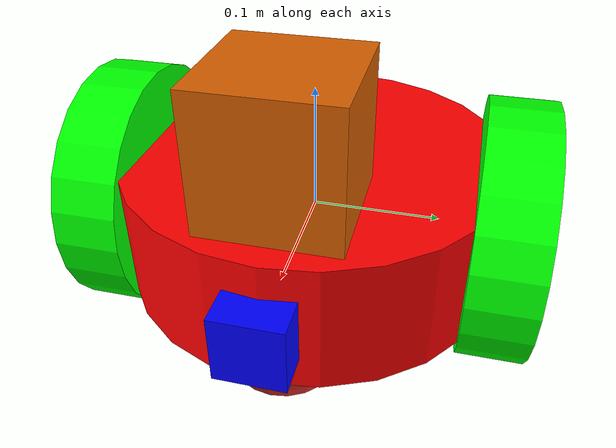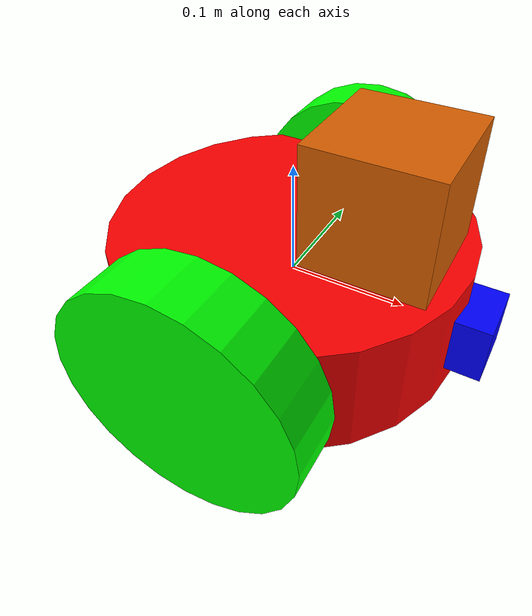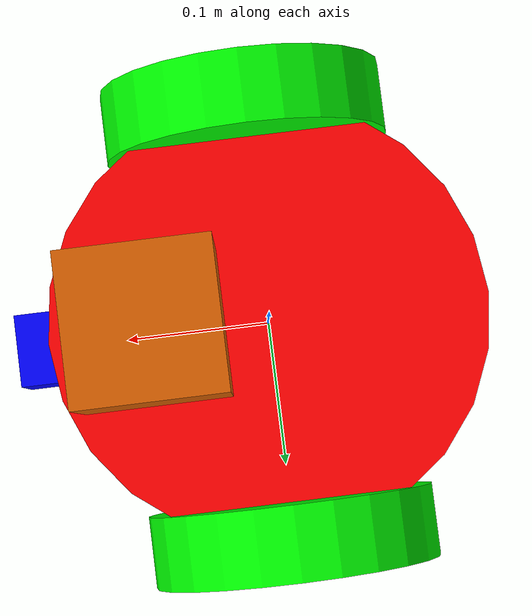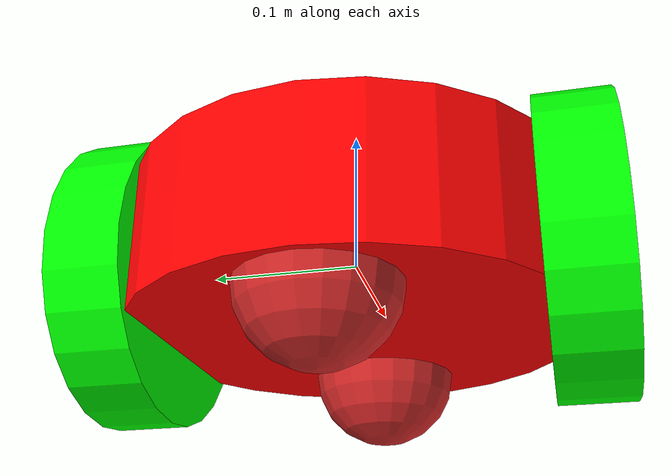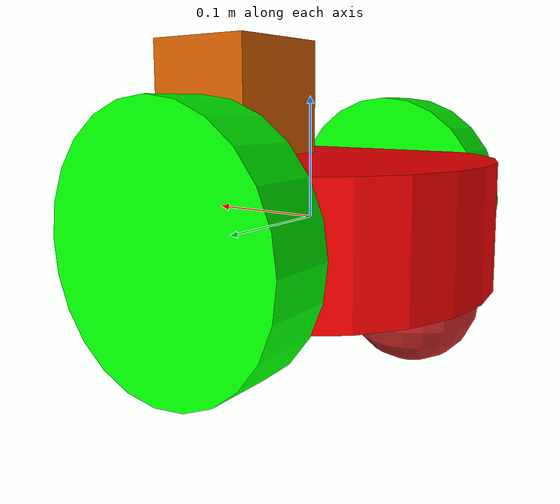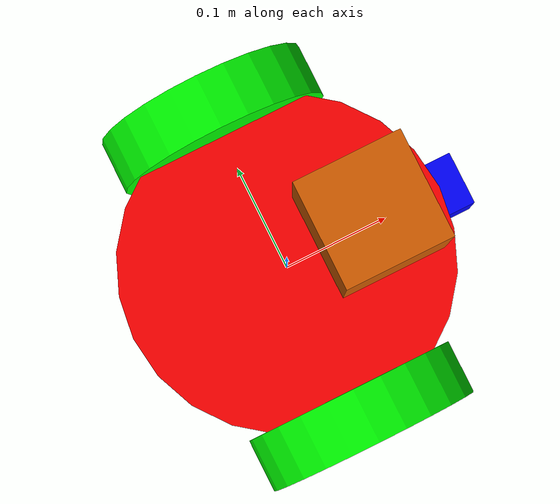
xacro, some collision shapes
<?xml version='1.0'?>

<robot name="my_robot" xmlns:xacro="http://www.ros.org/wiki/xacro">

  <xacro:include filename="$(find my_robot)/urdf/my_robot.gazebo" />

  <link name="robot_footprint"></link>
  <joint name="robot_footprint_joint" type="fixed">
    <origin xyz="0 0 0" rpy="0 0 0" />
    <parent link="robot_footprint"/>
    <child link="chassis" />
  </joint>
  <link name='chassis'>
    <pose>0 0 0.1 0 0 0</pose>

    <inertial>
      <mass value="15.0"/>
      <origin xyz="0.0 0 0" rpy=" 0 0 0"/>
      <inertia
          ixx="0.1" ixy="0" ixz="0"
          iyy="0.1" iyz="0"
          izz="0.1"
      />
    </inertial>

    <collision name='collision'>
      <origin xyz="0 0 0" rpy=" 0 0 0"/>
      <geometry>
        <cylinder radius="0.15" length="0.1"/>
      </geometry>
    </collision>

    <visual name='chassis_visual'>
      <origin xyz="0 0 0" rpy=" 0 0 0"/>
      <geometry>
        <cylinder radius="0.15" length="0.1"/>
      </geometry>
      <material name="red">
          <color rgba="1.0 0.0 0.0 1.0"/>
      </material>
    </visual>

    <collision name='back_caster_collision'>
      <origin xyz="-0.095 0 -0.05" rpy=" 0 0 0"/>
      <geometry>
        <sphere radius="0.0499"/>
      </geometry>
    </collision>

    <visual name='back_caster_visual'>
      <origin xyz="-0.095 0 -0.05" rpy=" 0 0 0"/>
      <geometry>
        <sphere radius="0.05"/>
      </geometry>
    </visual>

    <collision name='front_caster_collision'>
      <origin xyz="0.095 0 -0.05" rpy=" 0 0 0"/>
      <geometry>
        <sphere radius="0.0499"/>
      </geometry>
    </collision>

    <visual name='front_caster_visual'>
      <origin xyz="0.095 0 -0.05" rpy=" 0 0 0"/>
      <geometry>
        <sphere radius="0.05"/>
      </geometry>
    </visual>

  </link>

  <link name='right_wheel'>
    <inertial>
      <mass value="5.0"/>
      <inertia
          ixx="0.1" ixy="0" ixz="0"
          iyy="0.1" iyz="0"
          izz="0.1"
      />
    </inertial>

    <collision>
      <origin xyz="0 0 0" rpy=" 0 1.5707 1.5707"/>
      <geometry>
        <cylinder radius="0.1" length="0.05"/>
      </geometry>
    </collision>

    <visual>
      <origin xyz="0 0 0" rpy=" 0 1.5707 1.5707"/>
      <geometry>
        <cylinder radius="0.1" length="0.05"/>
      </geometry>
      <material name="green">
        <color rgba="0 1.0 0 1.0"/>
      </material>
    </visual>
  </link>
  <link name='left_wheel'>
    <inertial>
      <mass value="5.0"/>
      <inertia
          ixx="0.1" ixy="0" ixz="0"
          iyy="0.1" iyz="0"
          izz="0.1"
      />
    </inertial>

    <collision>
      <origin xyz="0 0 0" rpy=" 0 1.5707 1.5707"/>
      <geometry>
        <cylinder radius="0.1" length="0.05"/>
      </geometry>
    </collision>

    <visual>
      <origin xyz="0 0 0" rpy=" 0 1.5707 1.5707"/>
      <geometry>
        <cylinder radius="0.1" length="0.05"/>
      </geometry>
      <material name="green">
        <color rgba="0 1.0 0 1.0"/>
      </material>
    </visual>
  </link>

  <link name="camera">
    <inertial>
      <mass value="0.1"/>
      <inertia
        ixx="1e-6" ixy="0" ixz="0"
        iyy="1e-6" iyz="0"
        izz="1e-6"
      />
    </inertial>
    <collision>
      <origin xyz="0 0 0" rpy=" 0 0 0" />
      <geometry>
        <box size="0.05 0.05 0.05" />
      </geometry>
    </collision>
    <visual>
      <origin xyz="0 0 0" rpy=" 0 0 0" />
      <geometry>
        <box size="0.05 0.05 0.05" />
      </geometry>
      <material name="blue">
        <color rgba="0.0 0 1.0 1.0"/>
      </material>
    </visual>
  </link>

  <link name="hokuyo">
    <inertial>
      <mass value="1e-5" />
      <inertia
        ixx="1e-6" ixy="0" ixz="0"
        iyy="1e-6" iyz="0"
        izz="1e-6"
      />
    </inertial>
    <collision>
      <origin xyz="0 0 0" rpy=" 0 0 0" />
      <geometry>
        <box size="0.1 0.1 0.1" />
      </geometry>
    </collision>
    <visual>
      <origin xyz="0 0 0" rpy=" 0 0 0" />
      <geometry>
        <mesh filename="package://my_robot/meshes/hokuyo.dae" />
      </geometry>
    </visual>
  </link>

  <link name="camera_link_optical">
  </link>

  <!--Joints-->
  <joint type="continuous" name="right_wheel_hinge">
    <origin xyz="0 0.15 0" rpy="0 0 0"/>
    <child link="right_wheel"/>
    <parent link="chassis"/>
    <axis xyz="0 1 0" rpy="0 0 0"/>
    <limit effort="10000" velocity="1000"/>
    <dynamics damping="1.0" friction="1.0"/>
  </joint>
  <joint type="continuous" name="left_wheel_hinge">
    <origin xyz="0 -0.15 0" rpy="0 0 0"/>
    <child link="left_wheel"/>
    <parent link="chassis"/>
    <axis xyz="0 1 0" rpy="0 0 0"/>
    <limit effort="10000" velocity="1000"/>
    <dynamics damping="1.0" friction="1.0"/>
  </joint>

  <joint type="fixed" name="camera_joint">
    <origin xyz="0.15 0 0" rpy="0 0 0" />
    <child link="camera" />
    <parent link="chassis" />
    <axis xyz="0 1 0" rpy="0 0 0"/>
  </joint>

  <joint type="fixed" name="hokuyo_joint">
    <origin xyz="0.08 0 0.1" rpy="0 0 0" />
    <child link="hokuyo" />
    <parent link="chassis" />
    <axis xyz="0 1 0" rpy="0 0 0"/>
  </joint>

  <joint name="camera_optical_joint" type="fixed">
    <origin xyz="0 0 0" rpy="-1.5707 0 -1.5707"/>
    <parent link="camera"/>
    <child link="camera_link_optical"/>
  </joint>
</robot>
